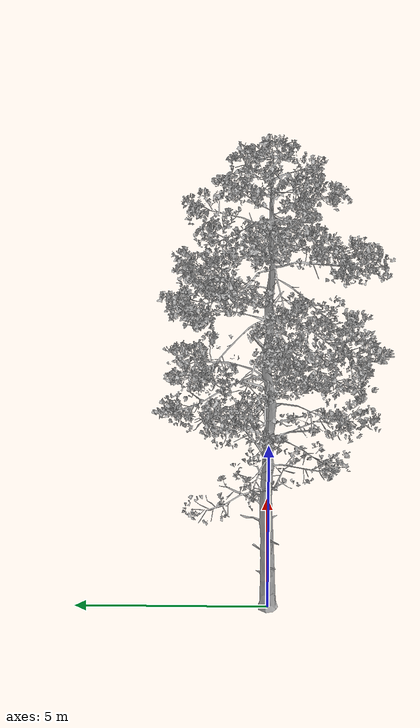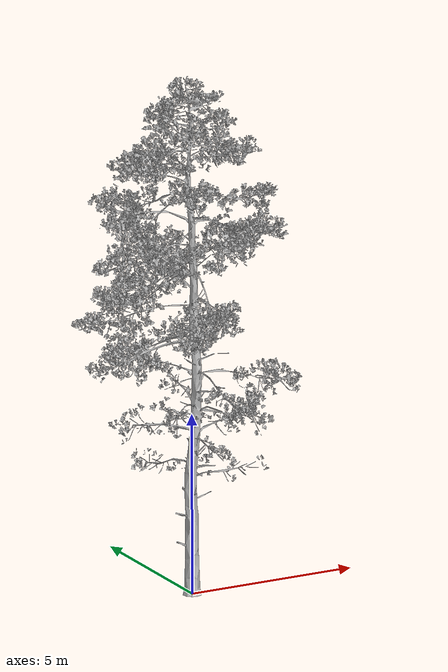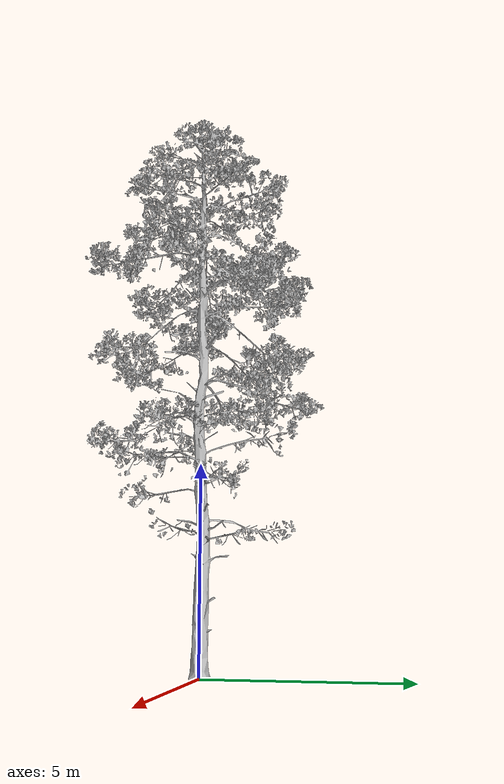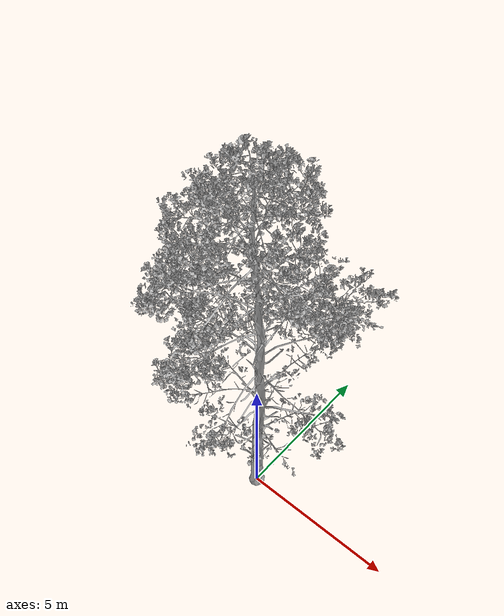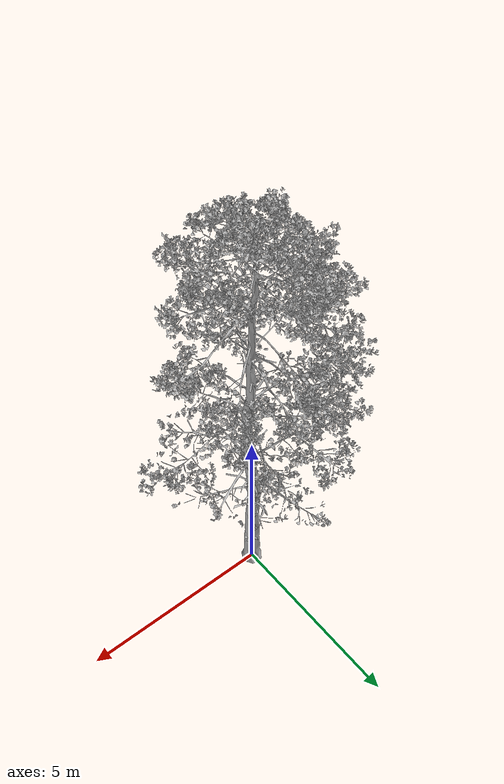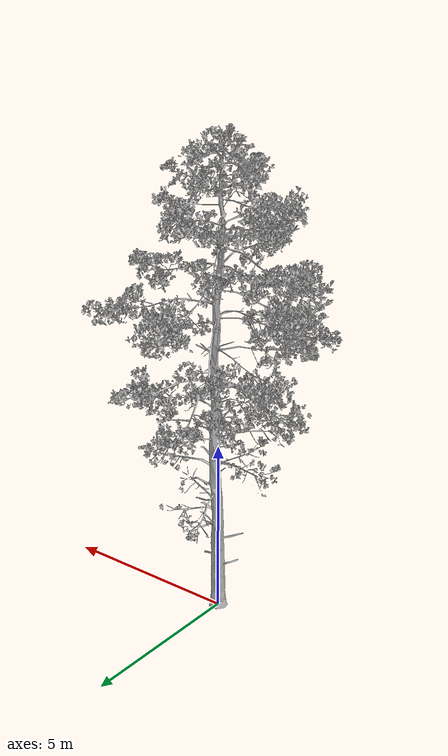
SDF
<sdf version="1.9">
  <model name="pinus_pinaster">
    <static>true</static>
    <link name="pinaster_link">
      <visual name="Pinus_pinaster">
        <plugin filename="gz-sim-label-system" name="gz::sim::systems::Label">
          <label>9</label>
        </plugin>
        <geometry>
          <mesh>
            <uri>meshes/pinus_pinaster/Pinus_Pinaster.dae</uri>
          </mesh>
        </geometry>
      </visual>
      <collision name="collision">
        <geometry>
          <mesh>
            <uri>meshes/pinus_pinaster/Pinus_Pinaster.dae</uri>
          </mesh>
        </geometry>
      </collision>
    </link>
  </model>
</sdf>
